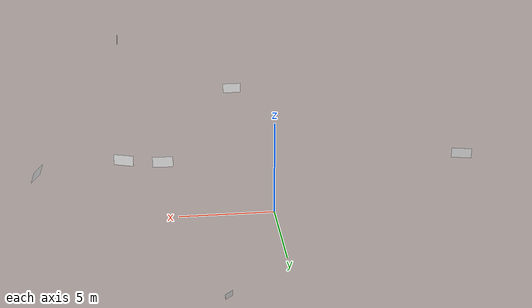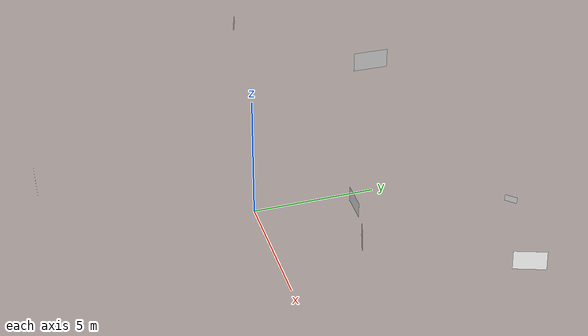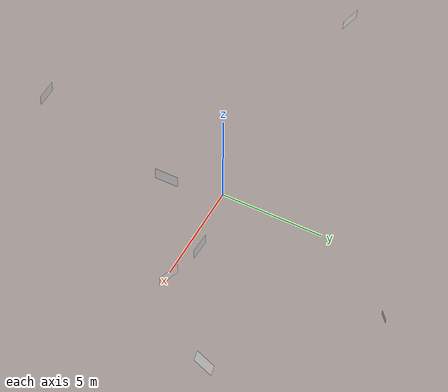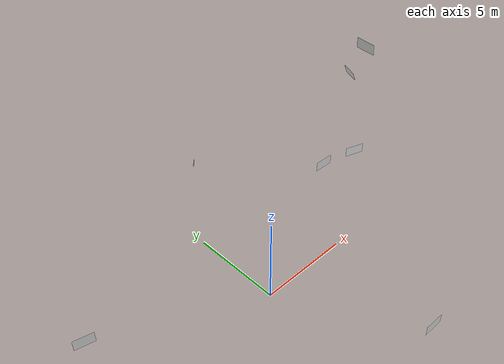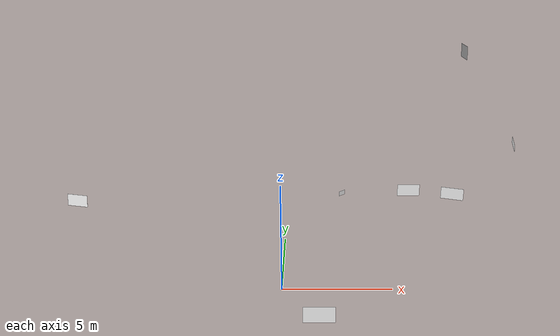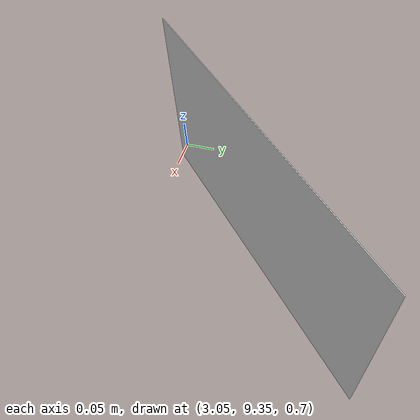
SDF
<sdf version="1.9">
 <world name="ATO2021">
  <physics name="1ms" type="ignored">
   <max_step_size>0.005</max_step_size>
   <real_time_factor>1.0</real_time_factor>
  </physics>
  <plugin filename="ignition-gazebo-physics-system" name="ignition::gazebo::systems::Physics"/>
  <plugin filename="ignition-gazebo-sensors-system" name="ignition::gazebo::systems::Sensors">
   <render_engine>ogre2</render_engine>
  </plugin>
  <plugin filename="ignition-gazebo-user-commands-system" name="ignition::gazebo::systems::UserCommands"/>
  <plugin filename="ignition-gazebo-scene-broadcaster-system" name="ignition::gazebo::systems::SceneBroadcaster"/>
  <scene><grid>false</grid><ambient>1 1 1</ambient></scene>
  <light type="directional" name="sun">
   <pose>0 0 10 0 0 0</pose>
   <diffuse>0.8 0.8 0.8 1</diffuse>
   <specular>0.2 0.2 0.2 1</specular>
   <attenuation>
    <range>1000</range>
    <constant>0.9</constant>
    <linear>0.01</linear>
    <quadratic>0.001</quadratic>
   </attenuation>
   <direction>0.0 0.5 -0.9</direction>
  </light>
  <model name="slide-0">
   <pose>11.69 5.21 4.8 -0.33 0 1.23</pose>
   <static>1</static>
   <link name="link">
    <pose>0 0 0.45 0 0 0</pose>
    <visual name="visual">
     <cast_shadows>0</cast_shadows>
     <geometry><box><size>1.0 0.001 0.54</size></box></geometry>
     <material>
      <diffuse>1 1 1 1</diffuse>
      <pbr>
       <metal>
        <albedo_map>model://slides/slide-0.png</albedo_map>
        <roughness>0</roughness>
        <metalness>0</metalness>
       </metal>
      </pbr>
     </material>
    </visual>
   </link>
  </model>
  <model name="slide-1">
   <pose>-9.4 1.64 3.19 -0.109 0 -0.24</pose>
   <static>1</static>
   <link name="link">
    <pose>0 0 0.45 0 0 0</pose>
    <visual name="visual">
     <cast_shadows>0</cast_shadows>
     <geometry><box><size>1.0 0.001 0.54</size></box></geometry>
     <material>
      <diffuse>1 1 1 1</diffuse>
      <pbr>
       <metal>
        <albedo_map>model://slides/slide-1.png</albedo_map>
        <roughness>0</roughness>
        <metalness>0</metalness>
       </metal>
      </pbr>
     </material>
    </visual>
   </link>
  </model>
  <model name="slide-2">
   <pose>1.46 -8.16 3.59 0 0 0</pose>
   <static>1</static>
   <link name="link">
    <pose>0 0 0.45 0 0 0</pose>
    <visual name="visual">
     <cast_shadows>0</cast_shadows>
     <geometry><box><size>1.0 0.001 0.54</size></box></geometry>
     <material>
      <diffuse>1 1 1 1</diffuse>
      <pbr>
       <metal>
        <albedo_map>model://slides/slide-2.png</albedo_map>
        <roughness>0</roughness>
        <metalness>0</metalness>
       </metal>
      </pbr>
     </material>
    </visual>
   </link>
  </model>
  <model name="slide-3">
   <pose>7.7 1.52 3.6 0 0 2.81</pose>
   <static>1</static>
   <link name="link">
    <pose>0 0 0.45 0 0 0</pose>
    <visual name="visual">
     <cast_shadows>0</cast_shadows>
     <geometry><box><size>1.0 0.001 0.54</size></box></geometry>
     <material>
      <diffuse>1 1 1 1</diffuse>
      <pbr>
       <metal>
        <albedo_map>model://slides/slide-3.png</albedo_map>
        <roughness>0</roughness>
        <metalness>0</metalness>
       </metal>
      </pbr>
     </material>
    </visual>
   </link>
  </model>
  <model name="slide-4">
   <pose>7.7 1.52 10 0.04 0 -1.57</pose>
   <static>1</static>
   <link name="link">
    <pose>0 0 0.45 0 0 0</pose>
    <visual name="visual">
     <cast_shadows>0</cast_shadows>
     <geometry><box><size>1.0 0.001 0.54</size></box></geometry>
     <material>
      <diffuse>1 1 1 1</diffuse>
      <pbr>
       <metal>
        <albedo_map>model://slides/slide-4.png</albedo_map>
        <roughness>0</roughness>
        <metalness>0</metalness>
       </metal>
      </pbr>
     </material>
    </visual>
   </link>
  </model>
  <model name="slide-5">
   <pose>5.79 1.95 3.6 0 0 3.10</pose>
   <static>1</static>
   <link name="link">
    <pose>0 0 0.45 0 0 0</pose>
    <visual name="visual">
     <cast_shadows>0</cast_shadows>
     <geometry><box><size>1.0 0.001 0.54</size></box></geometry>
     <material>
      <diffuse>1 1 1 1</diffuse>
      <pbr>
       <metal>
        <albedo_map>model://slides/slide-5.png</albedo_map>
        <roughness>0</roughness>
        <metalness>0</metalness>
       </metal>
      </pbr>
     </material>
    </visual>
   </link>
  </model>
  <model name="slide-6">
   <pose>3.248 9.52 0.375 0 0 -2.38</pose>
   <static>1</static>
   <link name="link">
    <pose>0 0 0.45 0 0 0</pose>
    <visual name="visual">
     <transparency>0.01</transparency>
     <cast_shadows>0</cast_shadows>
     <geometry><box><size>0.5 0.001 0.27</size></box></geometry>
     <material>
      <diffuse>1 1 1 1</diffuse>
      <pbr>
       <metal>
        <albedo_map>model://slides/slide-6.png</albedo_map>
        <roughness>0</roughness>
        <metalness>0</metalness>
       </metal>
      </pbr>
     </material>
    </visual>
   </link>
  </model>
  <model name="slide-7">
   <pose>3.248 9.52 0.375 0 0 -2.38</pose>
   <static>1</static>
   <link name="link">
    <pose>0 0 0.45 0 0 0</pose>
    <visual name="visual">
     <transparency>0.01</transparency>
     <cast_shadows>0</cast_shadows>
     <geometry><box><size>0.5 0.001 0.27</size></box></geometry>
     <material>
      <diffuse>1 1 1 1</diffuse>
      <pbr>
       <metal>
        <albedo_map>model://slides/slide-7.png</albedo_map>
        <roughness>0</roughness>
        <metalness>0</metalness>
       </metal>
      </pbr>
     </material>
    </visual>
   </link>
  </model>
  <model name="slide-8">
   <pose>3.248 9.52 0.375 0 0 -2.38</pose>
   <static>1</static>
   <link name="link">
    <pose>0 0 0.45 0 0 0</pose>
    <visual name="visual">
     <transparency>0.01</transparency>
     <cast_shadows>0</cast_shadows>
     <geometry><box><size>0.5 0.001 0.27</size></box></geometry>
     <material>
      <diffuse>1 1 1 1</diffuse>
      <pbr>
       <metal>
        <albedo_map>model://slides/slide-8.png</albedo_map>
        <roughness>0</roughness>
        <metalness>0</metalness>
       </metal>
      </pbr>
     </material>
    </visual>
   </link>
  </model>
  <model name="slide-9">
   <pose>3.248 9.52 0.375 0 0 -2.38</pose>
   <static>1</static>
   <link name="link">
    <pose>0 0 0.45 0 0 0</pose>
    <visual name="visual">
     <transparency>0.01</transparency>
     <cast_shadows>0</cast_shadows>
     <geometry><box><size>0.5 0.001 0.27</size></box></geometry>
     <material>
      <diffuse>1 1 1 1</diffuse>
      <pbr>
       <metal>
        <albedo_map>model://slides/slide-9.png</albedo_map>
        <roughness>0</roughness>
        <metalness>0</metalness>
       </metal>
      </pbr>
     </material>
    </visual>
   </link>
  </model>
  <model name="slide-10">
   <pose>3.248 9.52 0.375 0 0 -2.38</pose>
   <static>1</static>
   <link name="link">
    <pose>0 0 0.45 0 0 0</pose>
    <visual name="visual">
     <transparency>0.01</transparency>
     <cast_shadows>0</cast_shadows>
     <geometry><box><size>0.5 0.001 0.27</size></box></geometry>
     <material>
      <diffuse>1 1 1 1</diffuse>
      <pbr>
       <metal>
        <albedo_map>model://slides/slide-10.png</albedo_map>
        <roughness>0</roughness>
        <metalness>0</metalness>
       </metal>
      </pbr>
     </material>
    </visual>
   </link>
  </model>
  <model name="slide-11">
   <pose>3.248 9.52 0.375 0 0 -2.38</pose>
   <static>1</static>
   <link name="link">
    <pose>0 0 0.45 0 0 0</pose>
    <visual name="visual">
     <transparency>0.01</transparency>
     <cast_shadows>0</cast_shadows>
     <geometry><box><size>0.5 0.001 0.27</size></box></geometry>
     <material>
      <diffuse>1 1 1 1</diffuse>
      <pbr>
       <metal>
        <albedo_map>model://slides/slide-11.png</albedo_map>
        <roughness>0</roughness>
        <metalness>0</metalness>
       </metal>
      </pbr>
     </material>
    </visual>
   </link>
  </model>
  <model name="slide-12">
   <pose>3.248 9.52 0.375 0 0 -2.38</pose>
   <static>1</static>
   <link name="link">
    <pose>0 0 0.45 0 0 0</pose>
    <visual name="visual">
     <transparency>0.01</transparency>
     <cast_shadows>0</cast_shadows>
     <geometry><box><size>0.5 0.001 0.27</size></box></geometry>
     <material>
      <diffuse>1 1 1 1</diffuse>
      <pbr>
       <metal>
        <albedo_map>model://slides/slide-12.png</albedo_map>
        <roughness>0</roughness>
        <metalness>0</metalness>
       </metal>
      </pbr>
     </material>
    </visual>
   </link>
  </model>
  <model name="slide-13">
   <pose>3.248 9.52 0.375 0 0 -2.38</pose>
   <static>1</static>
   <link name="link">
    <pose>0 0 0.45 0 0 0</pose>
    <visual name="visual">
     <transparency>0.01</transparency>
     <cast_shadows>0</cast_shadows>
     <geometry><box><size>0.5 0.001 0.27</size></box></geometry>
     <material>
      <diffuse>1 1 1 1</diffuse>
      <pbr>
       <metal>
        <albedo_map>model://slides/slide-13.png</albedo_map>
        <roughness>0</roughness>
        <metalness>0</metalness>
       </metal>
      </pbr>
     </material>
    </visual>
   </link>
  </model>
  <model name="slide-14">
   <pose>3.248 9.52 0.375 0 0 -2.38</pose>
   <static>1</static>
   <link name="link">
    <pose>0 0 0.45 0 0 0</pose>
    <visual name="visual">
     <transparency>0.01</transparency>
     <cast_shadows>0</cast_shadows>
     <geometry><box><size>0.5 0.001 0.27</size></box></geometry>
     <material>
      <diffuse>1 1 1 1</diffuse>
      <pbr>
       <metal>
        <albedo_map>model://slides/slide-14.png</albedo_map>
        <roughness>0</roughness>
        <metalness>0</metalness>
       </metal>
      </pbr>
     </material>
    </visual>
   </link>
  </model>
  <model name="slide-15">
   <pose>3.248 9.52 0.375 0 0 -2.38</pose>
   <static>1</static>
   <link name="link">
    <pose>0 0 0.45 0 0 0</pose>
    <visual name="visual">
     <transparency>0.01</transparency>
     <cast_shadows>0</cast_shadows>
     <geometry><box><size>0.5 0.001 0.27</size></box></geometry>
     <material>
      <diffuse>1 1 1 1</diffuse>
      <pbr>
       <metal>
        <albedo_map>model://slides/slide-15.png</albedo_map>
        <roughness>0</roughness>
        <metalness>0</metalness>
       </metal>
      </pbr>
     </material>
    </visual>
   </link>
  </model>
  <model name="slide-16">
   <pose>3.248 9.52 0.375 0 0 -2.38</pose>
   <static>1</static>
   <link name="link">
    <pose>0 0 0.45 0 0 0</pose>
    <visual name="visual">
     <transparency>0.01</transparency>
     <cast_shadows>0</cast_shadows>
     <geometry><box><size>0.5 0.001 0.27</size></box></geometry>
     <material>
      <diffuse>1 1 1 1</diffuse>
      <pbr>
       <metal>
        <albedo_map>model://slides/slide-16.png</albedo_map>
        <roughness>0</roughness>
        <metalness>0</metalness>
       </metal>
      </pbr>
     </material>
    </visual>
   </link>
  </model>
  <model name="slide-17">
   <pose>3.248 9.52 0.375 0 0 -2.38</pose>
   <static>1</static>
   <link name="link">
    <pose>0 0 0.45 0 0 0</pose>
    <visual name="visual">
     <transparency>0.01</transparency>
     <cast_shadows>0</cast_shadows>
     <geometry><box><size>0.5 0.001 0.27</size></box></geometry>
     <material>
      <diffuse>1 1 1 1</diffuse>
      <pbr>
       <metal>
        <albedo_map>model://slides/slide-17.png</albedo_map>
        <roughness>0</roughness>
        <metalness>0</metalness>
       </metal>
      </pbr>
     </material>
    </visual>
   </link>
  </model>
  <model name="slide-18">
   <pose>3.248 9.52 0.375 0 0 -2.38</pose>
   <static>1</static>
   <link name="link">
    <pose>0 0 0.45 0 0 0</pose>
    <visual name="visual">
     <transparency>0.01</transparency>
     <cast_shadows>0</cast_shadows>
     <geometry><box><size>0.5 0.001 0.27</size></box></geometry>
     <material>
      <diffuse>1 1 1 1</diffuse>
      <pbr>
       <metal>
        <albedo_map>model://slides/slide-18.png</albedo_map>
        <roughness>0</roughness>
        <metalness>0</metalness>
       </metal>
      </pbr>
     </material>
    </visual>
   </link>
  </model>
  <model name="slide-19">
   <pose>3.248 9.52 0.375 0 0 -2.38</pose>
   <static>1</static>
   <link name="link">
    <pose>0 0 0.45 0 0 0</pose>
    <visual name="visual">
     <transparency>0.01</transparency>
     <cast_shadows>0</cast_shadows>
     <geometry><box><size>0.5 0.001 0.27</size></box></geometry>
     <material>
      <diffuse>1 1 1 1</diffuse>
      <pbr>
       <metal>
        <albedo_map>model://slides/slide-19.png</albedo_map>
        <roughness>0</roughness>
        <metalness>0</metalness>
       </metal>
      </pbr>
     </material>
    </visual>
   </link>
  </model>
  <model name="slide-20">
   <pose>3.248 9.52 0.375 0 0 -2.38</pose>
   <static>1</static>
   <link name="link">
    <pose>0 0 0.45 0 0 0</pose>
    <visual name="visual">
     <transparency>0.01</transparency>
     <cast_shadows>0</cast_shadows>
     <geometry><box><size>0.5 0.001 0.27</size></box></geometry>
     <material>
      <diffuse>1 1 1 1</diffuse>
      <pbr>
       <metal>
        <albedo_map>model://slides/slide-20.png</albedo_map>
        <roughness>0</roughness>
        <metalness>0</metalness>
       </metal>
      </pbr>
     </material>
    </visual>
   </link>
  </model>
 </world>
</sdf>
